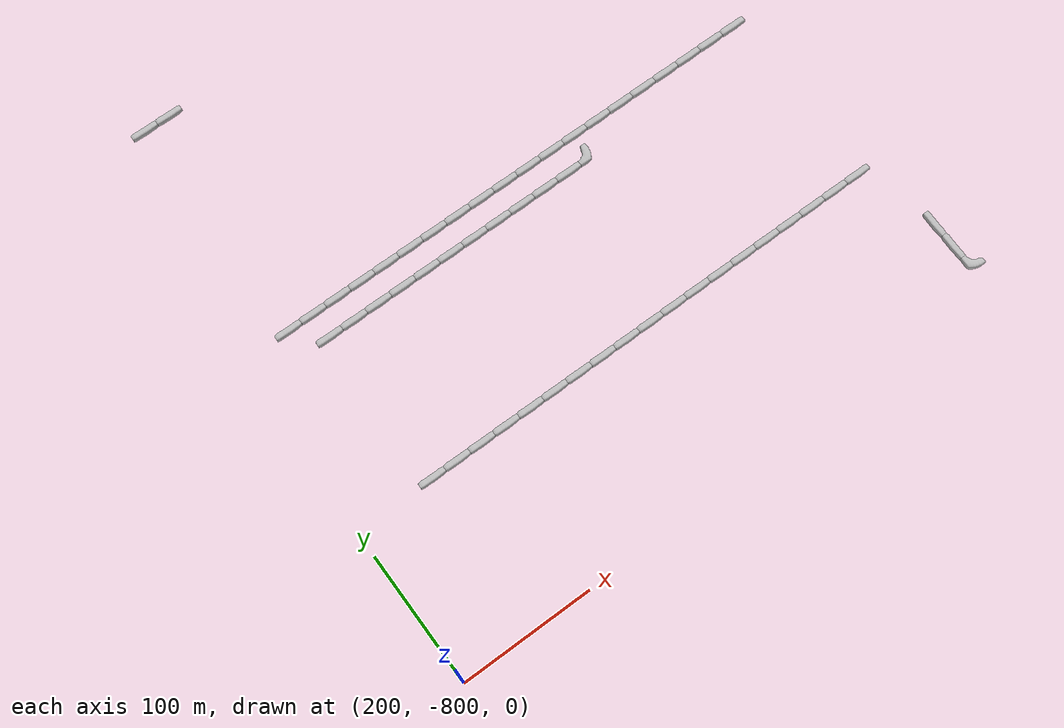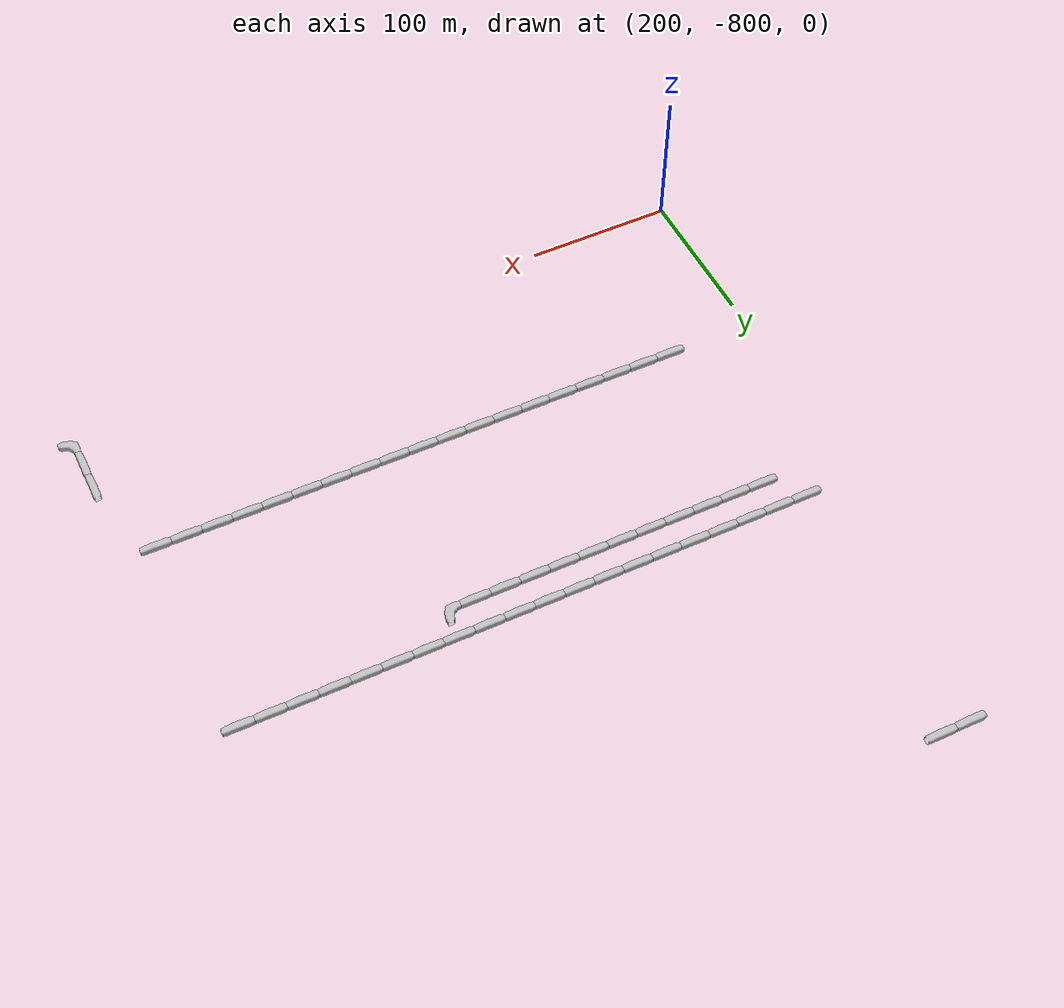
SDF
<sdf version="1.6">
 <world name="cave_32000_64">
  <include>
   <static>true</static>
   <name>cave_12_-27</name>
   <pose>240 -540 0 0 0 1.5707963267948966</pose>
   <uri>model://cave_straight_20m</uri>
  </include>
  <include>
   <static>true</static>
   <name>cave_13_-27</name>
   <pose>260 -540 0 0 0 1.5707963267948966</pose>
   <uri>model://cave_straight_20m</uri>
  </include>
  <include>
   <static>true</static>
   <name>cave_14_-27</name>
   <pose>280 -540 0 0 0 1.5707963267948966</pose>
   <uri>model://cave_straight_20m</uri>
  </include>
  <include>
   <static>true</static>
   <name>cave_15_-27</name>
   <pose>300 -540 0 0 0 1.5707963267948966</pose>
   <uri>model://cave_straight_20m</uri>
  </include>
  <include>
   <static>true</static>
   <name>cave_16_-27</name>
   <pose>320 -540 0 0 0 1.5707963267948966</pose>
   <uri>model://cave_straight_20m</uri>
  </include>
  <include>
   <static>true</static>
   <name>cave_17_-27</name>
   <pose>340 -540 0 0 0 1.5707963267948966</pose>
   <uri>model://cave_straight_20m</uri>
  </include>
  <include>
   <static>true</static>
   <name>cave_18_-27</name>
   <pose>360 -540 0 0 0 1.5707963267948966</pose>
   <uri>model://cave_straight_20m</uri>
  </include>
  <include>
   <static>true</static>
   <name>cave_19_-27</name>
   <pose>380 -540 0 0 0 1.5707963267948966</pose>
   <uri>model://cave_straight_20m</uri>
  </include>
  <include>
   <static>true</static>
   <name>cave_20_-27</name>
   <pose>400 -540 0 0 0 1.5707963267948966</pose>
   <uri>model://cave_straight_20m</uri>
  </include>
  <include>
   <static>true</static>
   <name>cave_21_-27</name>
   <pose>420 -540 0 0 0 1.5707963267948966</pose>
   <uri>model://cave_straight_20m</uri>
  </include>
  <include>
   <static>true</static>
   <name>cave_22_-27</name>
   <pose>440 -540 0 0 0 1.5707963267948966</pose>
   <uri>model://cave_straight_20m</uri>
  </include>
  <include>
   <static>true</static>
   <name>cave_23_-27</name>
   <pose>460 -540 0 0 0 1.5707963267948966</pose>
   <uri>model://cave_straight_20m</uri>
  </include>
  <include>
   <static>true</static>
   <name>cave_24_-27</name>
   <pose>480 -540 0 0 0 1.5707963267948966</pose>
   <uri>model://cave_straight_20m</uri>
  </include>
  <include>
   <static>true</static>
   <name>cave_25_-27</name>
   <pose>500 -540 0 0 0 1.5707963267948966</pose>
   <uri>model://cave_straight_20m</uri>
  </include>
  <include>
   <static>true</static>
   <name>cave_26_-27</name>
   <pose>520 -540 0 0 0 1.5707963267948966</pose>
   <uri>model://cave_straight_20m</uri>
  </include>
  <include>
   <static>true</static>
   <name>cave_27_-27</name>
   <pose>540 -540 0 0 0 1.5707963267948966</pose>
   <uri>model://cave_straight_20m</uri>
  </include>
  <include>
   <static>true</static>
   <name>cave_28_-27</name>
   <pose>560 -540 0 0 0 1.5707963267948966</pose>
   <uri>model://cave_straight_20m</uri>
  </include>
  <include>
   <static>true</static>
   <name>cave_29_-27</name>
   <pose>580 -540 0 0 0 1.5707963267948966</pose>
   <uri>model://cave_straight_20m</uri>
  </include>
  <include>
   <static>true</static>
   <name>cave_30_-27</name>
   <pose>600 -540 0 0 0 1.5707963267948966</pose>
   <uri>model://cave_straight_20m</uri>
  </include>
  <include>
   <static>true</static>
   <name>cave_31_-27</name>
   <pose>620 -540 0 0 0 1.5707963267948966</pose>
   <uri>model://cave_straight_20m</uri>
  </include>
  <include>
   <static>true</static>
   <name>cave_32_-37</name>
   <pose>640 -740 0 0 0 0.0</pose>
   <uri>model://cave_straight_20m</uri>
  </include>
  <include>
   <static>true</static>
   <name>cave_32_-38</name>
   <pose>640 -760 0 0 0 0.0</pose>
   <uri>model://cave_straight_20m</uri>
  </include>
  <include>
   <static>true</static>
   <name>cave_32_-39</name>
   <pose>640 -780 0 0 0 0.0</pose>
   <uri>model://cave_L_20m</uri>
  </include>
  <include>
   <static>true</static>
   <name>cave_31_-34</name>
   <pose>620 -680 0 0 0 1.5707963267948966</pose>
   <uri>model://cave_straight_20m</uri>
  </include>
  <include>
   <static>true</static>
   <name>cave_30_-34</name>
   <pose>600 -680 0 0 0 1.5707963267948966</pose>
   <uri>model://cave_straight_20m</uri>
  </include>
  <include>
   <static>true</static>
   <name>cave_29_-34</name>
   <pose>580 -680 0 0 0 1.5707963267948966</pose>
   <uri>model://cave_straight_20m</uri>
  </include>
  <include>
   <static>true</static>
   <name>cave_28_-34</name>
   <pose>560 -680 0 0 0 1.5707963267948966</pose>
   <uri>model://cave_straight_20m</uri>
  </include>
  <include>
   <static>true</static>
   <name>cave_27_-34</name>
   <pose>540 -680 0 0 0 1.5707963267948966</pose>
   <uri>model://cave_straight_20m</uri>
  </include>
  <include>
   <static>true</static>
   <name>cave_26_-34</name>
   <pose>520 -680 0 0 0 1.5707963267948966</pose>
   <uri>model://cave_straight_20m</uri>
  </include>
  <include>
   <static>true</static>
   <name>cave_25_-34</name>
   <pose>500 -680 0 0 0 1.5707963267948966</pose>
   <uri>model://cave_straight_20m</uri>
  </include>
  <include>
   <static>true</static>
   <name>cave_24_-34</name>
   <pose>480 -680 0 0 0 1.5707963267948966</pose>
   <uri>model://cave_straight_20m</uri>
  </include>
  <include>
   <static>true</static>
   <name>cave_23_-34</name>
   <pose>460 -680 0 0 0 1.5707963267948966</pose>
   <uri>model://cave_straight_20m</uri>
  </include>
  <include>
   <static>true</static>
   <name>cave_22_-34</name>
   <pose>440 -680 0 0 0 1.5707963267948966</pose>
   <uri>model://cave_straight_20m</uri>
  </include>
  <include>
   <static>true</static>
   <name>cave_21_-34</name>
   <pose>420 -680 0 0 0 1.5707963267948966</pose>
   <uri>model://cave_straight_20m</uri>
  </include>
  <include>
   <static>true</static>
   <name>cave_20_-34</name>
   <pose>400 -680 0 0 0 1.5707963267948966</pose>
   <uri>model://cave_straight_20m</uri>
  </include>
  <include>
   <static>true</static>
   <name>cave_19_-34</name>
   <pose>380 -680 0 0 0 1.5707963267948966</pose>
   <uri>model://cave_straight_20m</uri>
  </include>
  <include>
   <static>true</static>
   <name>cave_18_-34</name>
   <pose>360 -680 0 0 0 1.5707963267948966</pose>
   <uri>model://cave_straight_20m</uri>
  </include>
  <include>
   <static>true</static>
   <name>cave_17_-34</name>
   <pose>340 -680 0 0 0 1.5707963267948966</pose>
   <uri>model://cave_straight_20m</uri>
  </include>
  <include>
   <static>true</static>
   <name>cave_16_-34</name>
   <pose>320 -680 0 0 0 1.5707963267948966</pose>
   <uri>model://cave_straight_20m</uri>
  </include>
  <include>
   <static>true</static>
   <name>cave_15_-34</name>
   <pose>300 -680 0 0 0 1.5707963267948966</pose>
   <uri>model://cave_straight_20m</uri>
  </include>
  <include>
   <static>true</static>
   <name>cave_14_-34</name>
   <pose>280 -680 0 0 0 1.5707963267948966</pose>
   <uri>model://cave_straight_20m</uri>
  </include>
  <include>
   <static>true</static>
   <name>cave_13_-34</name>
   <pose>260 -680 0 0 0 1.5707963267948966</pose>
   <uri>model://cave_straight_20m</uri>
  </include>
  <include>
   <static>true</static>
   <name>cave_13_-28</name>
   <pose>260 -560 0 0 0 1.5707963267948966</pose>
   <uri>model://cave_straight_20m</uri>
  </include>
  <include>
   <static>true</static>
   <name>cave_14_-28</name>
   <pose>280 -560 0 0 0 1.5707963267948966</pose>
   <uri>model://cave_straight_20m</uri>
  </include>
  <include>
   <static>true</static>
   <name>cave_15_-28</name>
   <pose>300 -560 0 0 0 1.5707963267948966</pose>
   <uri>model://cave_straight_20m</uri>
  </include>
  <include>
   <static>true</static>
   <name>cave_16_-28</name>
   <pose>320 -560 0 0 0 1.5707963267948966</pose>
   <uri>model://cave_straight_20m</uri>
  </include>
  <include>
   <static>true</static>
   <name>cave_17_-28</name>
   <pose>340 -560 0 0 0 1.5707963267948966</pose>
   <uri>model://cave_straight_20m</uri>
  </include>
  <include>
   <static>true</static>
   <name>cave_18_-28</name>
   <pose>360 -560 0 0 0 1.5707963267948966</pose>
   <uri>model://cave_straight_20m</uri>
  </include>
  <include>
   <static>true</static>
   <name>cave_19_-28</name>
   <pose>380 -560 0 0 0 1.5707963267948966</pose>
   <uri>model://cave_straight_20m</uri>
  </include>
  <include>
   <static>true</static>
   <name>cave_20_-28</name>
   <pose>400 -560 0 0 0 1.5707963267948966</pose>
   <uri>model://cave_straight_20m</uri>
  </include>
  <include>
   <static>true</static>
   <name>cave_21_-28</name>
   <pose>420 -560 0 0 0 1.5707963267948966</pose>
   <uri>model://cave_straight_20m</uri>
  </include>
  <include>
   <static>true</static>
   <name>cave_22_-28</name>
   <pose>440 -560 0 0 0 1.5707963267948966</pose>
   <uri>model://cave_straight_20m</uri>
  </include>
  <include>
   <static>true</static>
   <name>cave_23_-28</name>
   <pose>460 -560 0 0 0 1.5707963267948966</pose>
   <uri>model://cave_straight_20m</uri>
  </include>
  <include>
   <static>true</static>
   <name>cave_24_-28</name>
   <pose>480 -560 0 0 0 1.5707963267948966</pose>
   <uri>model://cave_L_20m</uri>
  </include>
  <include>
   <static>true</static>
   <name>cave_12_-18</name>
   <pose>240 -360 0 0 0 1.5707963267948966</pose>
   <uri>model://cave_straight_20m</uri>
  </include>
  <include>
   <static>true</static>
   <name>cave_13_-18</name>
   <pose>260 -360 0 0 0 1.5707963267948966</pose>
   <uri>model://cave_straight_20m</uri>
  </include>
 </world>
</sdf>
